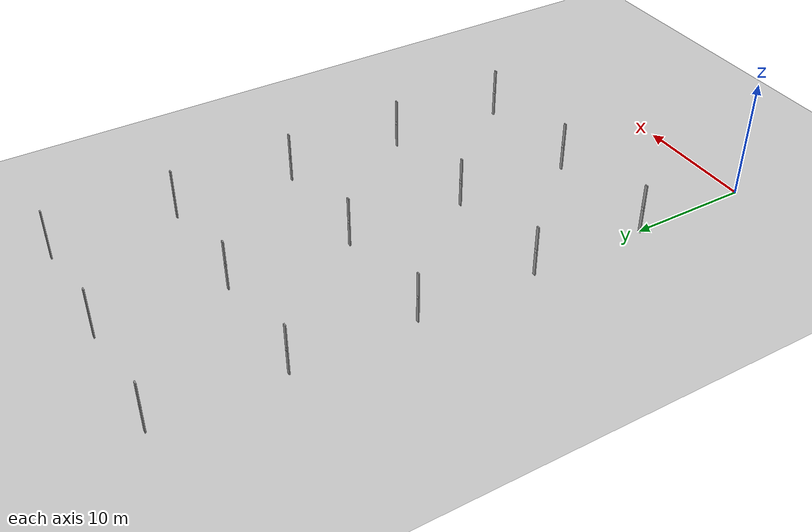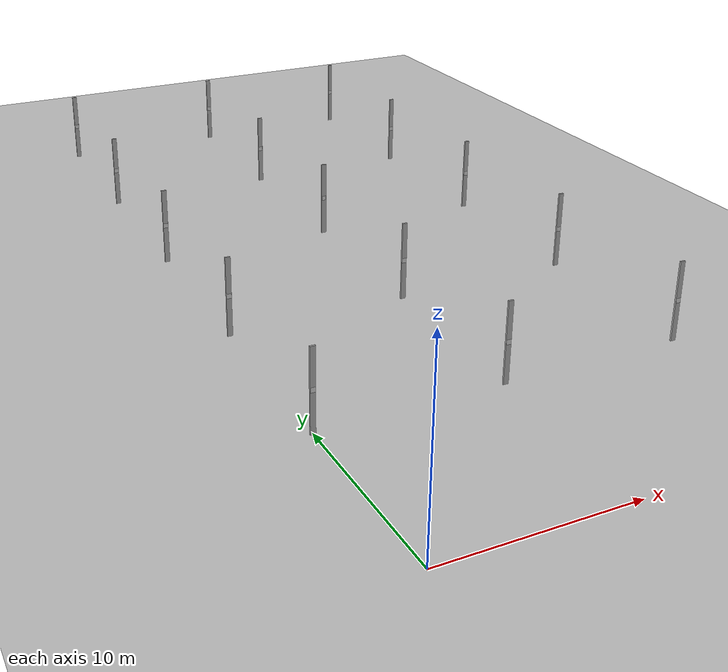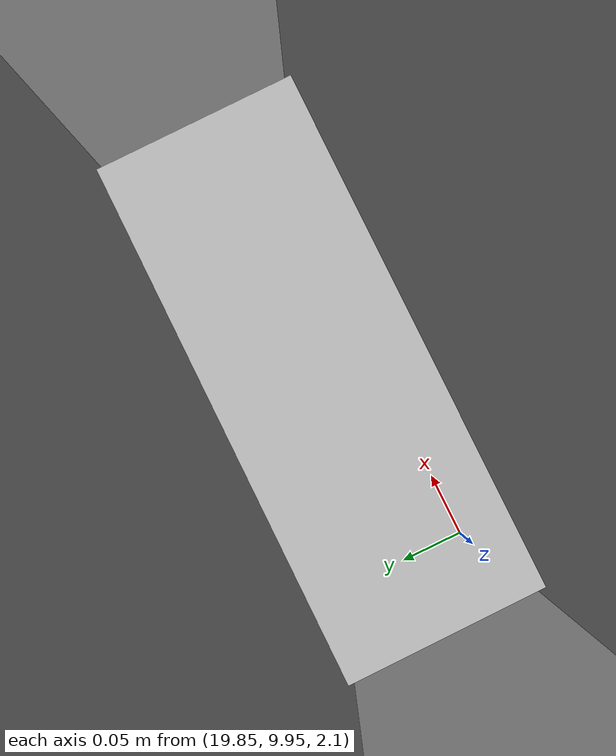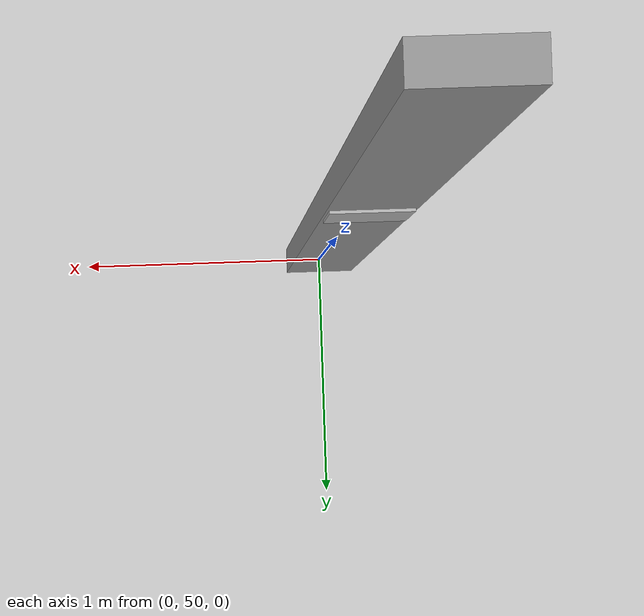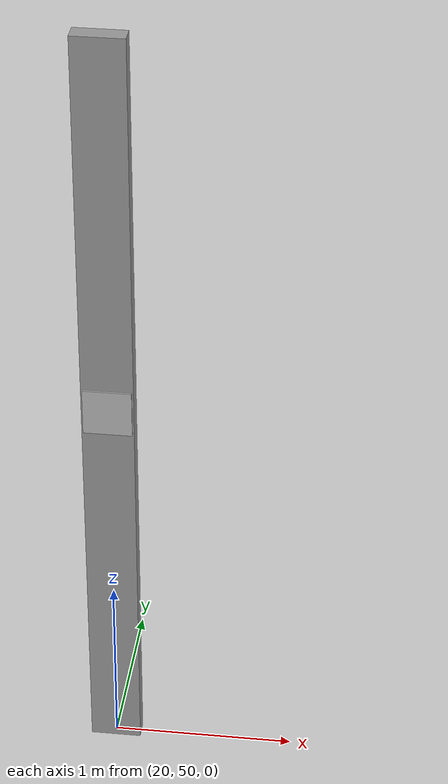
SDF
<sdf version="1.7">
 <world name="default">
  <light name="sun" type="directional">
   <pose>0 0 10 0 -0 0</pose>
   <diffuse>0.800 0.800 0.80000 1</diffuse>
   <specular>0.2 0.2 0.2 1</specular>
   <attenuation>
    <range>1000</range>
    <constant>0.9</constant>
    <linear>0.01</linear>
    <quadratic>0.001</quadratic>
   </attenuation>
   <direction>-0.5 0.1 -0.9</direction>
   <spot><inner_angle>0</inner_angle><outer_angle>0</outer_angle><falloff>0</falloff></spot>
  </light>
  <model name="ground_plane">
   <static>1</static>
   <link name="link">
    <collision name="collision">
     <geometry><plane><normal>0 0 1</normal><size>150 150</size></plane></geometry>
     <surface><friction><ode><mu>100</mu><mu2>50</mu2></ode></friction></surface>
    </collision>
    <visual name="visual">
     <cast_shadows>0</cast_shadows>
     <geometry><plane><normal>0 0 1</normal><size>150 150</size></plane></geometry>
     <material>
      <script><uri>file://media/materials/scripts/gazebo.material</uri><name>Gazebo/Grey</name></script>
     </material>
    </visual>
   </link>
  </model>
  <gravity>0 0 -9.8</gravity>
  <magnetic_field>6e-06 2.3e-05 -4.2e-05</magnetic_field>
  <atmosphere type="adiabatic"/>
  <physics type="ode">
   <max_step_size>0.001</max_step_size>
   <real_time_factor>1</real_time_factor>
   <real_time_update_rate>1000</real_time_update_rate>
  </physics>
  <scene>
   <ambient>0.2625 0.2625 0.2625 1</ambient>
   <background>0.7 0.7 0.7 1</background>
   <shadows>1</shadows>
  </scene>
  <audio><device>default</device></audio>
  <spherical_coordinates>
   <surface_model>EARTH_WGS84</surface_model>
   <latitude_deg>0</latitude_deg>
   <longitude_deg>0</longitude_deg>
   <elevation>0</elevation>
   <heading_deg>0</heading_deg>
  </spherical_coordinates>
  <model name="pilar">
   <link name="link_0">
    <inertial>
     <mass>0.325317</mass>
     <inertia>
      <ixx>0.52756</ixx>
      <ixy>0</ixy>
      <ixz>0</ixz>
      <iyy>0.527878</iyy>
      <iyz>0</iyz>
      <izz>0.00401833</izz>
     </inertia>
    </inertial>
    <pose>-0 0 3e-06 0 -0 0</pose>
    <visual name="visual">
     <geometry><box><size>0.2800 0.1 4.40362</size></box></geometry>
     <material>
      <lighting>1</lighting>
      <script><uri>file://media/materials/scripts/gazebo.material</uri><name>Gazebo/Grey</name></script>
      <shader type="pixel"/>
     </material>
    </visual>
    <collision name="collision">
     <geometry><box><size>0.282819 0.261223 4.40362</size></box></geometry>
     <surface>
      <friction>
       <ode><mu>100</mu><mu2>100</mu2><fdir1>0 0 0</fdir1><slip1>0</slip1><slip2>0</slip2></ode>
       <torsional>
        <coefficient>1</coefficient>
        <patch_radius>0</patch_radius>
        <surface_radius>0</surface_radius>
        <use_patch_radius>1</use_patch_radius>
        <ode><slip>0</slip></ode>
       </torsional>
      </friction>
      <bounce><restitution_coefficient>0</restitution_coefficient><threshold>1e+06</threshold></bounce>
      <contact>
       <collide_without_contact>0</collide_without_contact>
       <collide_without_contact_bitmask>1</collide_without_contact_bitmask>
       <collide_bitmask>1</collide_bitmask>
       <ode>
        <soft_cfm>0</soft_cfm>
        <soft_erp>0.2</soft_erp>
        <kp>1e+13</kp>
        <kd>1</kd>
        <max_vel>0.01</max_vel>
        <min_depth>0</min_depth>
       </ode>
       <bullet>
        <split_impulse>1</split_impulse>
        <split_impulse_penetration_threshold>-0.01</split_impulse_penetration_threshold>
        <soft_cfm>0</soft_cfm>
        <soft_erp>0.2</soft_erp>
        <kp>1e+13</kp>
        <kd>1</kd>
       </bullet>
      </contact>
     </surface>
    </collision>
   </link>
   <static>1</static>
   <pose>0.000 10.000 2.15473 0 -0 0</pose>
  </model>
  <model name="pilar_1">
   <link name="link_0">
    <inertial>
     <mass>0.325317</mass>
     <inertia>
      <ixx>0.52756</ixx>
      <ixy>0</ixy>
      <ixz>0</ixz>
      <iyy>0.527878</iyy>
      <iyz>0</iyz>
      <izz>0.00401833</izz>
     </inertia>
    </inertial>
    <pose>-0 0 3e-06 0 -0 0</pose>
    <visual name="visual">
     <geometry><box><size>0.2800 0.1 4.40362</size></box></geometry>
     <material>
      <lighting>1</lighting>
      <script><uri>file://media/materials/scripts/gazebo.material</uri><name>Gazebo/Grey</name></script>
      <shader type="pixel"/>
     </material>
    </visual>
    <collision name="collision">
     <geometry><box><size>0.282819 0.261223 4.40362</size></box></geometry>
     <surface>
      <friction>
       <ode><mu>100</mu><mu2>100</mu2><fdir1>0 0 0</fdir1><slip1>0</slip1><slip2>0</slip2></ode>
       <torsional>
        <coefficient>1</coefficient>
        <patch_radius>0</patch_radius>
        <surface_radius>0</surface_radius>
        <use_patch_radius>1</use_patch_radius>
        <ode><slip>0</slip></ode>
       </torsional>
      </friction>
      <bounce><restitution_coefficient>0</restitution_coefficient><threshold>1e+06</threshold></bounce>
      <contact>
       <collide_without_contact>0</collide_without_contact>
       <collide_without_contact_bitmask>1</collide_without_contact_bitmask>
       <collide_bitmask>1</collide_bitmask>
       <ode>
        <soft_cfm>0</soft_cfm>
        <soft_erp>0.2</soft_erp>
        <kp>1e+13</kp>
        <kd>1</kd>
        <max_vel>0.01</max_vel>
        <min_depth>0</min_depth>
       </ode>
       <bullet>
        <split_impulse>1</split_impulse>
        <split_impulse_penetration_threshold>-0.01</split_impulse_penetration_threshold>
        <soft_cfm>0</soft_cfm>
        <soft_erp>0.2</soft_erp>
        <kp>1e+13</kp>
        <kd>1</kd>
       </bullet>
      </contact>
     </surface>
    </collision>
   </link>
   <static>1</static>
   <pose>0.000 20 2.15473 0 -0 0</pose>
  </model>
  <model name="pilar_2">
   <link name="link_0">
    <inertial>
     <mass>0.325317</mass>
     <inertia>
      <ixx>0.52756</ixx>
      <ixy>0</ixy>
      <ixz>0</ixz>
      <iyy>0.527878</iyy>
      <iyz>0</iyz>
      <izz>0.00401833</izz>
     </inertia>
    </inertial>
    <pose>-0 0 3e-06 0 -0 0</pose>
    <visual name="visual">
     <geometry><box><size>0.2800 0.1 4.40362</size></box></geometry>
     <material>
      <lighting>1</lighting>
      <script><uri>file://media/materials/scripts/gazebo.material</uri><name>Gazebo/Grey</name></script>
      <shader type="pixel"/>
     </material>
    </visual>
    <collision name="collision">
     <geometry><box><size>0.282819 0.261223 4.40362</size></box></geometry>
     <surface>
      <friction>
       <ode><mu>100</mu><mu2>100</mu2><fdir1>0 0 0</fdir1><slip1>0</slip1><slip2>0</slip2></ode>
       <torsional>
        <coefficient>1</coefficient>
        <patch_radius>0</patch_radius>
        <surface_radius>0</surface_radius>
        <use_patch_radius>1</use_patch_radius>
        <ode><slip>0</slip></ode>
       </torsional>
      </friction>
      <bounce><restitution_coefficient>0</restitution_coefficient><threshold>1e+06</threshold></bounce>
      <contact>
       <collide_without_contact>0</collide_without_contact>
       <collide_without_contact_bitmask>1</collide_without_contact_bitmask>
       <collide_bitmask>1</collide_bitmask>
       <ode>
        <soft_cfm>0</soft_cfm>
        <soft_erp>0.2</soft_erp>
        <kp>1e+13</kp>
        <kd>1</kd>
        <max_vel>0.01</max_vel>
        <min_depth>0</min_depth>
       </ode>
       <bullet>
        <split_impulse>1</split_impulse>
        <split_impulse_penetration_threshold>-0.01</split_impulse_penetration_threshold>
        <soft_cfm>0</soft_cfm>
        <soft_erp>0.2</soft_erp>
        <kp>1e+13</kp>
        <kd>1</kd>
       </bullet>
      </contact>
     </surface>
    </collision>
   </link>
   <static>1</static>
   <pose>0.000 30 2.15473 0 -0 0</pose>
  </model>
  <model name="pilar_3">
   <link name="link_0">
    <inertial>
     <mass>0.325317</mass>
     <inertia>
      <ixx>0.52756</ixx>
      <ixy>0</ixy>
      <ixz>0</ixz>
      <iyy>0.527878</iyy>
      <iyz>0</iyz>
      <izz>0.00401833</izz>
     </inertia>
    </inertial>
    <pose>-0 0 3e-06 0 -0 0</pose>
    <visual name="visual">
     <geometry><box><size>0.2800 0.1 4.40362</size></box></geometry>
     <material>
      <lighting>1</lighting>
      <script><uri>file://media/materials/scripts/gazebo.material</uri><name>Gazebo/Grey</name></script>
      <shader type="pixel"/>
     </material>
    </visual>
    <collision name="collision">
     <geometry><box><size>0.282819 0.261223 4.40362</size></box></geometry>
     <surface>
      <friction>
       <ode><mu>100</mu><mu2>100</mu2><fdir1>0 0 0</fdir1><slip1>0</slip1><slip2>0</slip2></ode>
       <torsional>
        <coefficient>1</coefficient>
        <patch_radius>0</patch_radius>
        <surface_radius>0</surface_radius>
        <use_patch_radius>1</use_patch_radius>
        <ode><slip>0</slip></ode>
       </torsional>
      </friction>
      <bounce><restitution_coefficient>0</restitution_coefficient><threshold>1e+06</threshold></bounce>
      <contact>
       <collide_without_contact>0</collide_without_contact>
       <collide_without_contact_bitmask>1</collide_without_contact_bitmask>
       <collide_bitmask>1</collide_bitmask>
       <ode>
        <soft_cfm>0</soft_cfm>
        <soft_erp>0.2</soft_erp>
        <kp>1e+13</kp>
        <kd>1</kd>
        <max_vel>0.01</max_vel>
        <min_depth>0</min_depth>
       </ode>
       <bullet>
        <split_impulse>1</split_impulse>
        <split_impulse_penetration_threshold>-0.01</split_impulse_penetration_threshold>
        <soft_cfm>0</soft_cfm>
        <soft_erp>0.2</soft_erp>
        <kp>1e+13</kp>
        <kd>1</kd>
       </bullet>
      </contact>
     </surface>
    </collision>
   </link>
   <static>1</static>
   <pose>0.000 40 2.15473 0 -0 0</pose>
  </model>
  <model name="pilar_4">
   <link name="link_0">
    <inertial>
     <mass>0.325317</mass>
     <inertia>
      <ixx>0.52756</ixx>
      <ixy>0</ixy>
      <ixz>0</ixz>
      <iyy>0.527878</iyy>
      <iyz>0</iyz>
      <izz>0.00401833</izz>
     </inertia>
    </inertial>
    <pose>-0 0 3e-06 0 -0 0</pose>
    <visual name="visual">
     <geometry><box><size>0.2800 0.1 4.40362</size></box></geometry>
     <material>
      <lighting>1</lighting>
      <script><uri>file://media/materials/scripts/gazebo.material</uri><name>Gazebo/Grey</name></script>
      <shader type="pixel"/>
     </material>
    </visual>
    <collision name="collision">
     <geometry><box><size>0.282819 0.261223 4.40362</size></box></geometry>
     <surface>
      <friction>
       <ode><mu>100</mu><mu2>100</mu2><fdir1>0 0 0</fdir1><slip1>0</slip1><slip2>0</slip2></ode>
       <torsional>
        <coefficient>1</coefficient>
        <patch_radius>0</patch_radius>
        <surface_radius>0</surface_radius>
        <use_patch_radius>1</use_patch_radius>
        <ode><slip>0</slip></ode>
       </torsional>
      </friction>
      <bounce><restitution_coefficient>0</restitution_coefficient><threshold>1e+06</threshold></bounce>
      <contact>
       <collide_without_contact>0</collide_without_contact>
       <collide_without_contact_bitmask>1</collide_without_contact_bitmask>
       <collide_bitmask>1</collide_bitmask>
       <ode>
        <soft_cfm>0</soft_cfm>
        <soft_erp>0.2</soft_erp>
        <kp>1e+13</kp>
        <kd>1</kd>
        <max_vel>0.01</max_vel>
        <min_depth>0</min_depth>
       </ode>
       <bullet>
        <split_impulse>1</split_impulse>
        <split_impulse_penetration_threshold>-0.01</split_impulse_penetration_threshold>
        <soft_cfm>0</soft_cfm>
        <soft_erp>0.2</soft_erp>
        <kp>1e+13</kp>
        <kd>1</kd>
       </bullet>
      </contact>
     </surface>
    </collision>
   </link>
   <static>1</static>
   <pose>0.000 50 2.15473 0 -0 0</pose>
  </model>
  <model name="pilar_5">
   <link name="link_0">
    <inertial>
     <mass>0.325317</mass>
     <inertia>
      <ixx>0.52756</ixx>
      <ixy>0</ixy>
      <ixz>0</ixz>
      <iyy>0.527878</iyy>
      <iyz>0</iyz>
      <izz>0.00401833</izz>
     </inertia>
    </inertial>
    <pose>-0 0 3e-06 0 -0 0</pose>
    <visual name="visual">
     <geometry><box><size>0.2800 0.1 4.40362</size></box></geometry>
     <material>
      <lighting>1</lighting>
      <script><uri>file://media/materials/scripts/gazebo.material</uri><name>Gazebo/Grey</name></script>
      <shader type="pixel"/>
     </material>
    </visual>
    <collision name="collision">
     <geometry><box><size>0.282819 0.261223 4.40362</size></box></geometry>
     <surface>
      <friction>
       <ode><mu>100</mu><mu2>100</mu2><fdir1>0 0 0</fdir1><slip1>0</slip1><slip2>0</slip2></ode>
       <torsional>
        <coefficient>1</coefficient>
        <patch_radius>0</patch_radius>
        <surface_radius>0</surface_radius>
        <use_patch_radius>1</use_patch_radius>
        <ode><slip>0</slip></ode>
       </torsional>
      </friction>
      <bounce><restitution_coefficient>0</restitution_coefficient><threshold>1e+06</threshold></bounce>
      <contact>
       <collide_without_contact>0</collide_without_contact>
       <collide_without_contact_bitmask>1</collide_without_contact_bitmask>
       <collide_bitmask>1</collide_bitmask>
       <ode>
        <soft_cfm>0</soft_cfm>
        <soft_erp>0.2</soft_erp>
        <kp>1e+13</kp>
        <kd>1</kd>
        <max_vel>0.01</max_vel>
        <min_depth>0</min_depth>
       </ode>
       <bullet>
        <split_impulse>1</split_impulse>
        <split_impulse_penetration_threshold>-0.01</split_impulse_penetration_threshold>
        <soft_cfm>0</soft_cfm>
        <soft_erp>0.2</soft_erp>
        <kp>1e+13</kp>
        <kd>1</kd>
       </bullet>
      </contact>
     </surface>
    </collision>
   </link>
   <static>1</static>
   <pose>10.000 10.000 2.15473 0 -0 0</pose>
  </model>
  <model name="pilar_6">
   <link name="link_0">
    <inertial>
     <mass>0.325317</mass>
     <inertia>
      <ixx>0.52756</ixx>
      <ixy>0</ixy>
      <ixz>0</ixz>
      <iyy>0.527878</iyy>
      <iyz>0</iyz>
      <izz>0.00401833</izz>
     </inertia>
    </inertial>
    <pose>-0 0 3e-06 0 -0 0</pose>
    <visual name="visual">
     <geometry><box><size>0.2800 0.1 4.40362</size></box></geometry>
     <material>
      <lighting>1</lighting>
      <script><uri>file://media/materials/scripts/gazebo.material</uri><name>Gazebo/Grey</name></script>
      <shader type="pixel"/>
     </material>
    </visual>
    <collision name="collision">
     <geometry><box><size>0.282819 0.261223 4.40362</size></box></geometry>
     <surface>
      <friction>
       <ode><mu>100</mu><mu2>100</mu2><fdir1>0 0 0</fdir1><slip1>0</slip1><slip2>0</slip2></ode>
       <torsional>
        <coefficient>1</coefficient>
        <patch_radius>0</patch_radius>
        <surface_radius>0</surface_radius>
        <use_patch_radius>1</use_patch_radius>
        <ode><slip>0</slip></ode>
       </torsional>
      </friction>
      <bounce><restitution_coefficient>0</restitution_coefficient><threshold>1e+06</threshold></bounce>
      <contact>
       <collide_without_contact>0</collide_without_contact>
       <collide_without_contact_bitmask>1</collide_without_contact_bitmask>
       <collide_bitmask>1</collide_bitmask>
       <ode>
        <soft_cfm>0</soft_cfm>
        <soft_erp>0.2</soft_erp>
        <kp>1e+13</kp>
        <kd>1</kd>
        <max_vel>0.01</max_vel>
        <min_depth>0</min_depth>
       </ode>
       <bullet>
        <split_impulse>1</split_impulse>
        <split_impulse_penetration_threshold>-0.01</split_impulse_penetration_threshold>
        <soft_cfm>0</soft_cfm>
        <soft_erp>0.2</soft_erp>
        <kp>1e+13</kp>
        <kd>1</kd>
       </bullet>
      </contact>
     </surface>
    </collision>
   </link>
   <static>1</static>
   <pose>10.000 20 2.15473 0 -0 0</pose>
  </model>
  <model name="pilar_7">
   <link name="link_0">
    <inertial>
     <mass>0.325317</mass>
     <inertia>
      <ixx>0.52756</ixx>
      <ixy>0</ixy>
      <ixz>0</ixz>
      <iyy>0.527878</iyy>
      <iyz>0</iyz>
      <izz>0.00401833</izz>
     </inertia>
    </inertial>
    <pose>-0 0 3e-06 0 -0 0</pose>
    <visual name="visual">
     <geometry><box><size>0.2800 0.1 4.40362</size></box></geometry>
     <material>
      <lighting>1</lighting>
      <script><uri>file://media/materials/scripts/gazebo.material</uri><name>Gazebo/Grey</name></script>
      <shader type="pixel"/>
     </material>
    </visual>
    <collision name="collision">
     <geometry><box><size>0.282819 0.261223 4.40362</size></box></geometry>
     <surface>
      <friction>
       <ode><mu>100</mu><mu2>100</mu2><fdir1>0 0 0</fdir1><slip1>0</slip1><slip2>0</slip2></ode>
       <torsional>
        <coefficient>1</coefficient>
        <patch_radius>0</patch_radius>
        <surface_radius>0</surface_radius>
        <use_patch_radius>1</use_patch_radius>
        <ode><slip>0</slip></ode>
       </torsional>
      </friction>
      <bounce><restitution_coefficient>0</restitution_coefficient><threshold>1e+06</threshold></bounce>
      <contact>
       <collide_without_contact>0</collide_without_contact>
       <collide_without_contact_bitmask>1</collide_without_contact_bitmask>
       <collide_bitmask>1</collide_bitmask>
       <ode>
        <soft_cfm>0</soft_cfm>
        <soft_erp>0.2</soft_erp>
        <kp>1e+13</kp>
        <kd>1</kd>
        <max_vel>0.01</max_vel>
        <min_depth>0</min_depth>
       </ode>
       <bullet>
        <split_impulse>1</split_impulse>
        <split_impulse_penetration_threshold>-0.01</split_impulse_penetration_threshold>
        <soft_cfm>0</soft_cfm>
        <soft_erp>0.2</soft_erp>
        <kp>1e+13</kp>
        <kd>1</kd>
       </bullet>
      </contact>
     </surface>
    </collision>
   </link>
   <static>1</static>
   <pose>10.000 30 2.15473 0 -0 0</pose>
  </model>
  <model name="pilar_8">
   <link name="link_0">
    <inertial>
     <mass>0.325317</mass>
     <inertia>
      <ixx>0.52756</ixx>
      <ixy>0</ixy>
      <ixz>0</ixz>
      <iyy>0.527878</iyy>
      <iyz>0</iyz>
      <izz>0.00401833</izz>
     </inertia>
    </inertial>
    <pose>-0 0 3e-06 0 -0 0</pose>
    <visual name="visual">
     <geometry><box><size>0.2800 0.1 4.40362</size></box></geometry>
     <material>
      <lighting>1</lighting>
      <script><uri>file://media/materials/scripts/gazebo.material</uri><name>Gazebo/Grey</name></script>
      <shader type="pixel"/>
     </material>
    </visual>
    <collision name="collision">
     <geometry><box><size>0.282819 0.261223 4.40362</size></box></geometry>
     <surface>
      <friction>
       <ode><mu>100</mu><mu2>100</mu2><fdir1>0 0 0</fdir1><slip1>0</slip1><slip2>0</slip2></ode>
       <torsional>
        <coefficient>1</coefficient>
        <patch_radius>0</patch_radius>
        <surface_radius>0</surface_radius>
        <use_patch_radius>1</use_patch_radius>
        <ode><slip>0</slip></ode>
       </torsional>
      </friction>
      <bounce><restitution_coefficient>0</restitution_coefficient><threshold>1e+06</threshold></bounce>
      <contact>
       <collide_without_contact>0</collide_without_contact>
       <collide_without_contact_bitmask>1</collide_without_contact_bitmask>
       <collide_bitmask>1</collide_bitmask>
       <ode>
        <soft_cfm>0</soft_cfm>
        <soft_erp>0.2</soft_erp>
        <kp>1e+13</kp>
        <kd>1</kd>
        <max_vel>0.01</max_vel>
        <min_depth>0</min_depth>
       </ode>
       <bullet>
        <split_impulse>1</split_impulse>
        <split_impulse_penetration_threshold>-0.01</split_impulse_penetration_threshold>
        <soft_cfm>0</soft_cfm>
        <soft_erp>0.2</soft_erp>
        <kp>1e+13</kp>
        <kd>1</kd>
       </bullet>
      </contact>
     </surface>
    </collision>
   </link>
   <static>1</static>
   <pose>10.000 40 2.15473 0 -0 0</pose>
  </model>
  <model name="pilar_9">
   <link name="link_0">
    <inertial>
     <mass>0.325317</mass>
     <inertia>
      <ixx>0.52756</ixx>
      <ixy>0</ixy>
      <ixz>0</ixz>
      <iyy>0.527878</iyy>
      <iyz>0</iyz>
      <izz>0.00401833</izz>
     </inertia>
    </inertial>
    <pose>-0 0 3e-06 0 -0 0</pose>
    <visual name="visual">
     <geometry><box><size>0.2800 0.1 4.40362</size></box></geometry>
     <material>
      <lighting>1</lighting>
      <script><uri>file://media/materials/scripts/gazebo.material</uri><name>Gazebo/Grey</name></script>
      <shader type="pixel"/>
     </material>
    </visual>
    <collision name="collision">
     <geometry><box><size>0.282819 0.261223 4.40362</size></box></geometry>
     <surface>
      <friction>
       <ode><mu>100</mu><mu2>100</mu2><fdir1>0 0 0</fdir1><slip1>0</slip1><slip2>0</slip2></ode>
       <torsional>
        <coefficient>1</coefficient>
        <patch_radius>0</patch_radius>
        <surface_radius>0</surface_radius>
        <use_patch_radius>1</use_patch_radius>
        <ode><slip>0</slip></ode>
       </torsional>
      </friction>
      <bounce><restitution_coefficient>0</restitution_coefficient><threshold>1e+06</threshold></bounce>
      <contact>
       <collide_without_contact>0</collide_without_contact>
       <collide_without_contact_bitmask>1</collide_without_contact_bitmask>
       <collide_bitmask>1</collide_bitmask>
       <ode>
        <soft_cfm>0</soft_cfm>
        <soft_erp>0.2</soft_erp>
        <kp>1e+13</kp>
        <kd>1</kd>
        <max_vel>0.01</max_vel>
        <min_depth>0</min_depth>
       </ode>
       <bullet>
        <split_impulse>1</split_impulse>
        <split_impulse_penetration_threshold>-0.01</split_impulse_penetration_threshold>
        <soft_cfm>0</soft_cfm>
        <soft_erp>0.2</soft_erp>
        <kp>1e+13</kp>
        <kd>1</kd>
       </bullet>
      </contact>
     </surface>
    </collision>
   </link>
   <static>1</static>
   <pose>10.000 50 2.15473 0 -0 0</pose>
  </model>
  <model name="pilar_10">
   <link name="link_0">
    <inertial>
     <mass>0.325317</mass>
     <inertia>
      <ixx>0.52756</ixx>
      <ixy>0</ixy>
      <ixz>0</ixz>
      <iyy>0.527878</iyy>
      <iyz>0</iyz>
      <izz>0.00401833</izz>
     </inertia>
    </inertial>
    <pose>-0 0 3e-06 0 -0 0</pose>
    <visual name="visual">
     <geometry><box><size>0.2800 0.1 4.40362</size></box></geometry>
     <material>
      <lighting>1</lighting>
      <script><uri>file://media/materials/scripts/gazebo.material</uri><name>Gazebo/Grey</name></script>
      <shader type="pixel"/>
     </material>
    </visual>
    <collision name="collision">
     <geometry><box><size>0.282819 0.261223 4.40362</size></box></geometry>
     <surface>
      <friction>
       <ode><mu>100</mu><mu2>100</mu2><fdir1>0 0 0</fdir1><slip1>0</slip1><slip2>0</slip2></ode>
       <torsional>
        <coefficient>1</coefficient>
        <patch_radius>0</patch_radius>
        <surface_radius>0</surface_radius>
        <use_patch_radius>1</use_patch_radius>
        <ode><slip>0</slip></ode>
       </torsional>
      </friction>
      <bounce><restitution_coefficient>0</restitution_coefficient><threshold>1e+06</threshold></bounce>
      <contact>
       <collide_without_contact>0</collide_without_contact>
       <collide_without_contact_bitmask>1</collide_without_contact_bitmask>
       <collide_bitmask>1</collide_bitmask>
       <ode>
        <soft_cfm>0</soft_cfm>
        <soft_erp>0.2</soft_erp>
        <kp>1e+13</kp>
        <kd>1</kd>
        <max_vel>0.01</max_vel>
        <min_depth>0</min_depth>
       </ode>
       <bullet>
        <split_impulse>1</split_impulse>
        <split_impulse_penetration_threshold>-0.01</split_impulse_penetration_threshold>
        <soft_cfm>0</soft_cfm>
        <soft_erp>0.2</soft_erp>
        <kp>1e+13</kp>
        <kd>1</kd>
       </bullet>
      </contact>
     </surface>
    </collision>
   </link>
   <static>1</static>
   <pose>20.000 10 2.15473 0 -0 0</pose>
  </model>
  <model name="pilar_11">
   <link name="link_0">
    <inertial>
     <mass>0.325317</mass>
     <inertia>
      <ixx>0.52756</ixx>
      <ixy>0</ixy>
      <ixz>0</ixz>
      <iyy>0.527878</iyy>
      <iyz>0</iyz>
      <izz>0.00401833</izz>
     </inertia>
    </inertial>
    <pose>-0 0 3e-06 0 -0 0</pose>
    <visual name="visual">
     <geometry><box><size>0.2800 0.1 4.40362</size></box></geometry>
     <material>
      <lighting>1</lighting>
      <script><uri>file://media/materials/scripts/gazebo.material</uri><name>Gazebo/Grey</name></script>
      <shader type="pixel"/>
     </material>
    </visual>
    <collision name="collision">
     <geometry><box><size>0.282819 0.261223 4.40362</size></box></geometry>
     <surface>
      <friction>
       <ode><mu>100</mu><mu2>100</mu2><fdir1>0 0 0</fdir1><slip1>0</slip1><slip2>0</slip2></ode>
       <torsional>
        <coefficient>1</coefficient>
        <patch_radius>0</patch_radius>
        <surface_radius>0</surface_radius>
        <use_patch_radius>1</use_patch_radius>
        <ode><slip>0</slip></ode>
       </torsional>
      </friction>
      <bounce><restitution_coefficient>0</restitution_coefficient><threshold>1e+06</threshold></bounce>
      <contact>
       <collide_without_contact>0</collide_without_contact>
       <collide_without_contact_bitmask>1</collide_without_contact_bitmask>
       <collide_bitmask>1</collide_bitmask>
       <ode>
        <soft_cfm>0</soft_cfm>
        <soft_erp>0.2</soft_erp>
        <kp>1e+13</kp>
        <kd>1</kd>
        <max_vel>0.01</max_vel>
        <min_depth>0</min_depth>
       </ode>
       <bullet>
        <split_impulse>1</split_impulse>
        <split_impulse_penetration_threshold>-0.01</split_impulse_penetration_threshold>
        <soft_cfm>0</soft_cfm>
        <soft_erp>0.2</soft_erp>
        <kp>1e+13</kp>
        <kd>1</kd>
       </bullet>
      </contact>
     </surface>
    </collision>
   </link>
   <static>1</static>
   <pose>20.000 20 2.15473 0 -0 0</pose>
  </model>
  <model name="pilar_12">
   <link name="link_0">
    <inertial>
     <mass>0.325317</mass>
     <inertia>
      <ixx>0.52756</ixx>
      <ixy>0</ixy>
      <ixz>0</ixz>
      <iyy>0.527878</iyy>
      <iyz>0</iyz>
      <izz>0.00401833</izz>
     </inertia>
    </inertial>
    <pose>-0 0 3e-06 0 -0 0</pose>
    <visual name="visual">
     <geometry><box><size>0.2800 0.1 4.40362</size></box></geometry>
     <material>
      <lighting>1</lighting>
      <script><uri>file://media/materials/scripts/gazebo.material</uri><name>Gazebo/Grey</name></script>
      <shader type="pixel"/>
     </material>
    </visual>
    <collision name="collision">
     <geometry><box><size>0.282819 0.261223 4.40362</size></box></geometry>
     <surface>
      <friction>
       <ode><mu>100</mu><mu2>100</mu2><fdir1>0 0 0</fdir1><slip1>0</slip1><slip2>0</slip2></ode>
       <torsional>
        <coefficient>1</coefficient>
        <patch_radius>0</patch_radius>
        <surface_radius>0</surface_radius>
        <use_patch_radius>1</use_patch_radius>
        <ode><slip>0</slip></ode>
       </torsional>
      </friction>
      <bounce><restitution_coefficient>0</restitution_coefficient><threshold>1e+06</threshold></bounce>
      <contact>
       <collide_without_contact>0</collide_without_contact>
       <collide_without_contact_bitmask>1</collide_without_contact_bitmask>
       <collide_bitmask>1</collide_bitmask>
       <ode>
        <soft_cfm>0</soft_cfm>
        <soft_erp>0.2</soft_erp>
        <kp>1e+13</kp>
        <kd>1</kd>
        <max_vel>0.01</max_vel>
        <min_depth>0</min_depth>
       </ode>
       <bullet>
        <split_impulse>1</split_impulse>
        <split_impulse_penetration_threshold>-0.01</split_impulse_penetration_threshold>
        <soft_cfm>0</soft_cfm>
        <soft_erp>0.2</soft_erp>
        <kp>1e+13</kp>
        <kd>1</kd>
       </bullet>
      </contact>
     </surface>
    </collision>
   </link>
   <static>1</static>
   <pose>20.000 30 2.15473 0 -0 0</pose>
  </model>
  <model name="pilar_13">
   <link name="link_0">
    <inertial>
     <mass>0.325317</mass>
     <inertia>
      <ixx>0.52756</ixx>
      <ixy>0</ixy>
      <ixz>0</ixz>
      <iyy>0.527878</iyy>
      <iyz>0</iyz>
      <izz>0.00401833</izz>
     </inertia>
    </inertial>
    <pose>-0 0 3e-06 0 -0 0</pose>
    <visual name="visual">
     <geometry><box><size>0.2800 0.1 4.40362</size></box></geometry>
     <material>
      <lighting>1</lighting>
      <script><uri>file://media/materials/scripts/gazebo.material</uri><name>Gazebo/Grey</name></script>
      <shader type="pixel"/>
     </material>
    </visual>
    <collision name="collision">
     <geometry><box><size>0.282819 0.261223 4.40362</size></box></geometry>
     <surface>
      <friction>
       <ode><mu>100</mu><mu2>100</mu2><fdir1>0 0 0</fdir1><slip1>0</slip1><slip2>0</slip2></ode>
       <torsional>
        <coefficient>1</coefficient>
        <patch_radius>0</patch_radius>
        <surface_radius>0</surface_radius>
        <use_patch_radius>1</use_patch_radius>
        <ode><slip>0</slip></ode>
       </torsional>
      </friction>
      <bounce><restitution_coefficient>0</restitution_coefficient><threshold>1e+06</threshold></bounce>
      <contact>
       <collide_without_contact>0</collide_without_contact>
       <collide_without_contact_bitmask>1</collide_without_contact_bitmask>
       <collide_bitmask>1</collide_bitmask>
       <ode>
        <soft_cfm>0</soft_cfm>
        <soft_erp>0.2</soft_erp>
        <kp>1e+13</kp>
        <kd>1</kd>
        <max_vel>0.01</max_vel>
        <min_depth>0</min_depth>
       </ode>
       <bullet>
        <split_impulse>1</split_impulse>
        <split_impulse_penetration_threshold>-0.01</split_impulse_penetration_threshold>
        <soft_cfm>0</soft_cfm>
        <soft_erp>0.2</soft_erp>
        <kp>1e+13</kp>
        <kd>1</kd>
       </bullet>
      </contact>
     </surface>
    </collision>
   </link>
   <static>1</static>
   <pose>20.000 40 2.15473 0 -0 0</pose>
  </model>
  <model name="pilar_14">
   <link name="link_0">
    <inertial>
     <mass>0.325317</mass>
     <inertia>
      <ixx>0.52756</ixx>
      <ixy>0</ixy>
      <ixz>0</ixz>
      <iyy>0.527878</iyy>
      <iyz>0</iyz>
      <izz>0.00401833</izz>
     </inertia>
    </inertial>
    <pose>-0 0 3e-06 0 -0 0</pose>
    <visual name="visual">
     <geometry><box><size>0.2800 0.1 4.40362</size></box></geometry>
     <material>
      <lighting>1</lighting>
      <script><uri>file://media/materials/scripts/gazebo.material</uri><name>Gazebo/Grey</name></script>
      <shader type="pixel"/>
     </material>
    </visual>
    <collision name="collision">
     <geometry><box><size>0.282819 0.261223 4.40362</size></box></geometry>
     <surface>
      <friction>
       <ode><mu>100</mu><mu2>100</mu2><fdir1>0 0 0</fdir1><slip1>0</slip1><slip2>0</slip2></ode>
       <torsional>
        <coefficient>1</coefficient>
        <patch_radius>0</patch_radius>
        <surface_radius>0</surface_radius>
        <use_patch_radius>1</use_patch_radius>
        <ode><slip>0</slip></ode>
       </torsional>
      </friction>
      <bounce><restitution_coefficient>0</restitution_coefficient><threshold>1e+06</threshold></bounce>
      <contact>
       <collide_without_contact>0</collide_without_contact>
       <collide_without_contact_bitmask>1</collide_without_contact_bitmask>
       <collide_bitmask>1</collide_bitmask>
       <ode>
        <soft_cfm>0</soft_cfm>
        <soft_erp>0.2</soft_erp>
        <kp>1e+13</kp>
        <kd>1</kd>
        <max_vel>0.01</max_vel>
        <min_depth>0</min_depth>
       </ode>
       <bullet>
        <split_impulse>1</split_impulse>
        <split_impulse_penetration_threshold>-0.01</split_impulse_penetration_threshold>
        <soft_cfm>0</soft_cfm>
        <soft_erp>0.2</soft_erp>
        <kp>1e+13</kp>
        <kd>1</kd>
       </bullet>
      </contact>
     </surface>
    </collision>
   </link>
   <static>1</static>
   <pose>20.000 50 2.15473 0 -0 0</pose>
  </model>
  <model name="Apriltag36_11_00000">
   <link name="main">
    <visual name="main_Visual">
     <geometry><box><size>0.2625 0.12 0.2625</size></box></geometry>
     <material>
      <script>
       <uri>model://Apriltag36_11_00000/materials/scripts</uri>
       <uri>model://Apriltag36_11_00000/materials/textures</uri>
       <name>Apriltag36_11_00000</name>
      </script>
     </material>
    </visual>
   </link>
   <static>1</static>
   <pose>0.000 10.000 2.21569 0 -0 0</pose>
  </model>
  <model name="Apriltag36_11_00001">
   <link name="main">
    <visual name="main_Visual">
     <geometry><box><size>0.2625 0.12 0.2625</size></box></geometry>
     <material>
      <script>
       <uri>model://Apriltag36_11_00001/materials/scripts</uri>
       <uri>model://Apriltag36_11_00001/materials/textures</uri>
       <name>Apriltag36_11_00001</name>
      </script>
     </material>
    </visual>
   </link>
   <static>1</static>
   <pose>0.000 20.0 2.21569 0 -0 0</pose>
  </model>
  <model name="Apriltag36_11_00002">
   <link name="main">
    <visual name="main_Visual">
     <geometry><box><size>0.2625 0.12 0.2625</size></box></geometry>
     <material>
      <script>
       <uri>model://Apriltag36_11_00002/materials/scripts</uri>
       <uri>model://Apriltag36_11_00002/materials/textures</uri>
       <name>Apriltag36_11_00002</name>
      </script>
     </material>
    </visual>
   </link>
   <static>1</static>
   <pose>0.000 30.0 2.21569 0 -0 0</pose>
  </model>
  <model name="Apriltag36_11_00003">
   <link name="main">
    <visual name="main_Visual">
     <geometry><box><size>0.2625 0.12 0.2625</size></box></geometry>
     <material>
      <script>
       <uri>model://Apriltag36_11_00003/materials/scripts</uri>
       <uri>model://Apriltag36_11_00003/materials/textures</uri>
       <name>Apriltag36_11_00003</name>
      </script>
     </material>
    </visual>
   </link>
   <static>1</static>
   <pose>0.000 40.0 2.21569 0 -0 0</pose>
  </model>
  <model name="Apriltag36_11_00004">
   <link name="main">
    <visual name="main_Visual">
     <geometry><box><size>0.2625 0.12 0.2625</size></box></geometry>
     <material>
      <script>
       <uri>model://Apriltag36_11_00004/materials/scripts</uri>
       <uri>model://Apriltag36_11_00004/materials/textures</uri>
       <name>Apriltag36_11_00004</name>
      </script>
     </material>
    </visual>
   </link>
   <static>1</static>
   <pose>0.000 50.0 2.21569 0 -0 0</pose>
  </model>
  <model name="Apriltag36_11_00005">
   <link name="main">
    <visual name="main_Visual">
     <geometry><box><size>0.2625 0.12 0.2625</size></box></geometry>
     <material>
      <script>
       <uri>model://Apriltag36_11_00005/materials/scripts</uri>
       <uri>model://Apriltag36_11_00005/materials/textures</uri>
       <name>Apriltag36_11_00005</name>
      </script>
     </material>
    </visual>
   </link>
   <static>1</static>
   <pose>10.000 10.000 2.21569 0 -0 0</pose>
  </model>
  <model name="Apriltag36_11_00006">
   <link name="main">
    <visual name="main_Visual">
     <geometry><box><size>0.2625 0.12 0.2625</size></box></geometry>
     <material>
      <script>
       <uri>model://Apriltag36_11_00006/materials/scripts</uri>
       <uri>model://Apriltag36_11_00006/materials/textures</uri>
       <name>Apriltag36_11_00006</name>
      </script>
     </material>
    </visual>
   </link>
   <static>1</static>
   <pose>10.000 20.0 2.21569 0 -0 0</pose>
  </model>
  <model name="Apriltag36_11_00007">
   <link name="main">
    <visual name="main_Visual">
     <geometry><box><size>0.2625 0.12 0.2625</size></box></geometry>
     <material>
      <script>
       <uri>model://Apriltag36_11_00007/materials/scripts</uri>
       <uri>model://Apriltag36_11_00007/materials/textures</uri>
       <name>Apriltag36_11_00007</name>
      </script>
     </material>
    </visual>
   </link>
   <static>1</static>
   <pose>10.000 30.0 2.21569 0 -0 0</pose>
  </model>
  <model name="Apriltag36_11_00008">
   <link name="main">
    <visual name="main_Visual">
     <geometry><box><size>0.2625 0.12 0.2625</size></box></geometry>
     <material>
      <script>
       <uri>model://Apriltag36_11_00008/materials/scripts</uri>
       <uri>model://Apriltag36_11_00008/materials/textures</uri>
       <name>Apriltag36_11_00008</name>
      </script>
     </material>
    </visual>
   </link>
   <static>1</static>
   <pose>10.000 40.0 2.21569 0 -0 0</pose>
  </model>
  <model name="Apriltag36_11_00009">
   <link name="main">
    <visual name="main_Visual">
     <geometry><box><size>0.2625 0.12 0.2625</size></box></geometry>
     <material>
      <script>
       <uri>model://Apriltag36_11_00009/materials/scripts</uri>
       <uri>model://Apriltag36_11_00009/materials/textures</uri>
       <name>Apriltag36_11_00009</name>
      </script>
     </material>
    </visual>
   </link>
   <static>1</static>
   <pose>10.000 50.0 2.21569 0 -0 0</pose>
  </model>
  <model name="Apriltag36_11_00010">
   <link name="main">
    <visual name="main_Visual">
     <geometry><box><size>0.2625 0.12 0.2625</size></box></geometry>
     <material>
      <script>
       <uri>model://Apriltag36_11_00010/materials/scripts</uri>
       <uri>model://Apriltag36_11_00010/materials/textures</uri>
       <name>Apriltag36_11_00010</name>
      </script>
     </material>
    </visual>
   </link>
   <static>1</static>
   <pose>20.000 10.000 2.21569 0 -0 0</pose>
  </model>
  <model name="Apriltag36_11_00011">
   <link name="main">
    <visual name="main_Visual">
     <geometry><box><size>0.2625 0.12 0.2625</size></box></geometry>
     <material>
      <script>
       <uri>model://Apriltag36_11_00011/materials/scripts</uri>
       <uri>model://Apriltag36_11_00011/materials/textures</uri>
       <name>Apriltag36_11_00011</name>
      </script>
     </material>
    </visual>
   </link>
   <static>1</static>
   <pose>20.000 20.0 2.21569 0 -0 0</pose>
  </model>
  <model name="Apriltag36_11_00012">
   <link name="main">
    <visual name="main_Visual">
     <geometry><box><size>0.2625 0.12 0.2625</size></box></geometry>
     <material>
      <script>
       <uri>model://Apriltag36_11_00012/materials/scripts</uri>
       <uri>model://Apriltag36_11_00012/materials/textures</uri>
       <name>Apriltag36_11_00012</name>
      </script>
     </material>
    </visual>
   </link>
   <static>1</static>
   <pose>20.000 30.0 2.21569 0 -0 0</pose>
  </model>
  <model name="Apriltag36_11_00013">
   <link name="main">
    <visual name="main_Visual">
     <geometry><box><size>0.2625 0.12 0.2625</size></box></geometry>
     <material>
      <script>
       <uri>model://Apriltag36_11_00013/materials/scripts</uri>
       <uri>model://Apriltag36_11_00013/materials/textures</uri>
       <name>Apriltag36_11_00013</name>
      </script>
     </material>
    </visual>
   </link>
   <static>1</static>
   <pose>20.000 40.0 2.21569 0 -0 0</pose>
  </model>
  <model name="Apriltag36_11_00014">
   <link name="main">
    <visual name="main_Visual">
     <geometry><box><size>0.2625 0.12 0.2625</size></box></geometry>
     <material>
      <script>
       <uri>model://Apriltag36_11_00014/materials/scripts</uri>
       <uri>model://Apriltag36_11_00014/materials/textures</uri>
       <name>Apriltag36_11_00014</name>
      </script>
     </material>
    </visual>
   </link>
   <static>1</static>
   <pose>20.000 50.0 2.21569 0 -0 0</pose>
  </model>
 </world>
</sdf>
